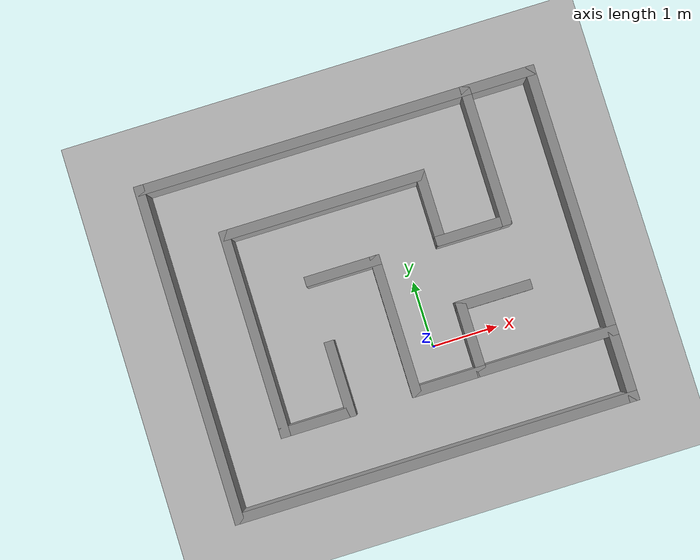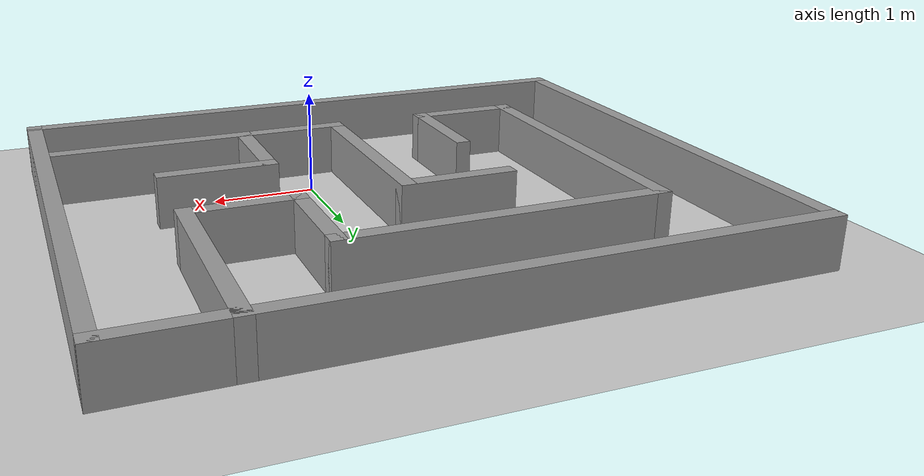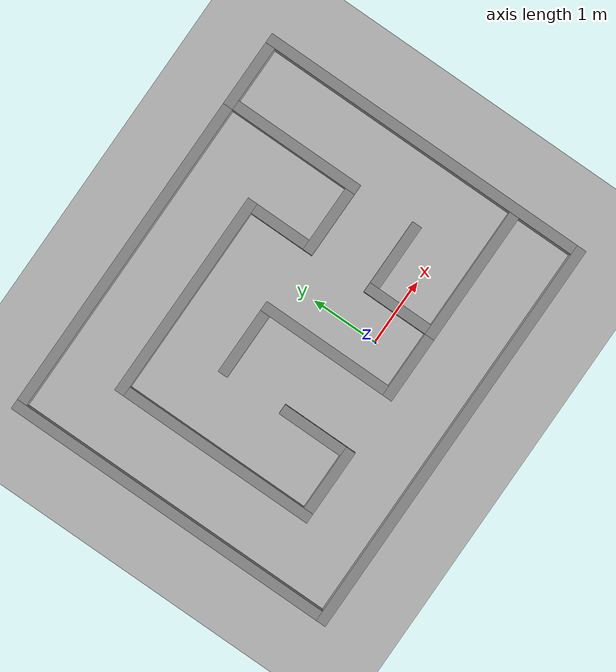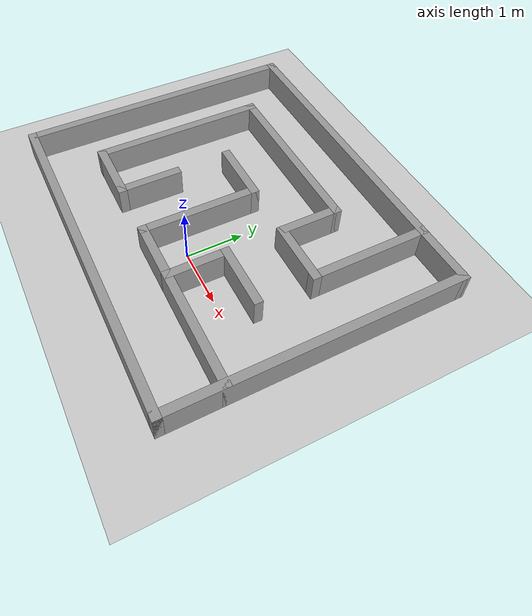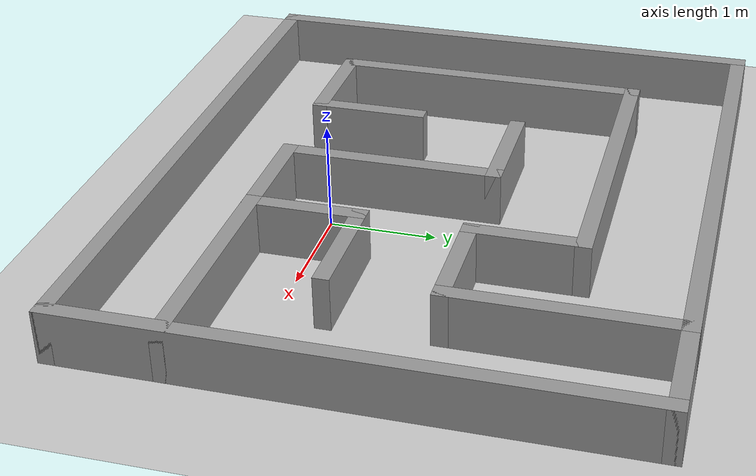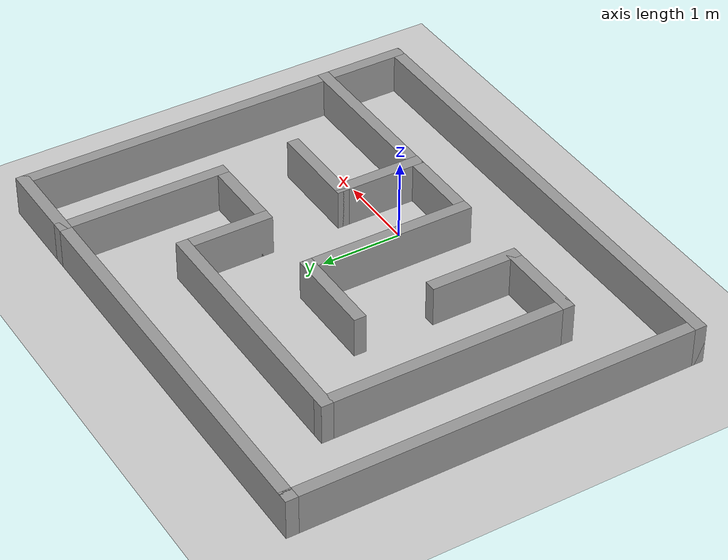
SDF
<sdf version="1.7">
 <world name="default">
  <light name="sun" type="directional">
   <pose>0 0 10 0 -0 0</pose>
   <diffuse>0.8 0.8 0.8 1</diffuse>
   <specular>0.2 0.2 0.2 1</specular>
   <attenuation>
    <range>1000</range>
    <constant>0.9</constant>
    <linear>0.01</linear>
    <quadratic>0.001</quadratic>
   </attenuation>
   <direction>-0.5 0.1 -0.9</direction>
   <spot><inner_angle>0</inner_angle><outer_angle>0</outer_angle><falloff>0</falloff></spot>
  </light>
  <model name="ground_plane">
   <static>1</static>
   <link name="link">
    <collision name="collision">
     <geometry><plane><normal>0 0 1</normal><size>100 100</size></plane></geometry>
     <surface><friction><ode><mu>100</mu><mu2>50</mu2></ode></friction></surface>
    </collision>
    <visual name="visual">
     <cast_shadows>0</cast_shadows>
     <geometry><plane><normal>0 0 1</normal><size>100 100</size></plane></geometry>
     <material>
      <script><uri>file://media/materials/scripts/gazebo.material</uri><name>Gazebo/Grey</name></script>
     </material>
    </visual>
   </link>
  </model>
  <gravity>0 0 -9.8</gravity>
  <magnetic_field>6e-06 2.3e-05 -4.2e-05</magnetic_field>
  <atmosphere type="adiabatic"/>
  <physics type="ode">
   <max_step_size>0.001</max_step_size>
   <real_time_factor>1</real_time_factor>
   <real_time_update_rate>1000</real_time_update_rate>
  </physics>
  <scene><ambient>0.4 0.4 0.4 1</ambient><background>0.7 0.7 0.7 1</background><shadows>1</shadows></scene>
  <audio><device>default</device></audio>
  <spherical_coordinates>
   <surface_model>EARTH_WGS84</surface_model>
   <latitude_deg>0</latitude_deg>
   <longitude_deg>0</longitude_deg>
   <elevation>0</elevation>
   <heading_deg>0</heading_deg>
  </spherical_coordinates>
  <model name="labyrinth">
   <pose>-0.45 0.95 0 0 -0 1.5708</pose>
   <link name="Wall_0">
    <collision name="Wall_0_Collision">
     <geometry><box><size>6.15 0.15 0.5</size></box></geometry>
     <pose>0 0 0.25 0 -0 0</pose>
    </collision>
    <visual name="Wall_0_Visual">
     <pose>0 0 0.25 0 -0 0</pose>
     <geometry><box><size>6.15 0.15 0.5</size></box></geometry>
     <material>
      <script><uri>file://media/materials/scripts/gazebo.material</uri><name>Gazebo/Grey</name></script>
      <ambient>1 1 1 1</ambient>
     </material>
     <meta><layer>0</layer></meta>
    </visual>
    <pose>-2.5 -0 0 0 -0 1.5708</pose>
   </link>
   <link name="Wall_10">
    <collision name="Wall_10_Collision">
     <geometry><box><size>3.15 0.15 0.5</size></box></geometry>
     <pose>0 0 0.25 0 -0 0</pose>
    </collision>
    <visual name="Wall_10_Visual">
     <pose>0 0 0.25 0 -0 0</pose>
     <geometry><box><size>3.15 0.15 0.5</size></box></geometry>
     <material>
      <script><uri>file://media/materials/scripts/gazebo.material</uri><name>Gazebo/Grey</name></script>
      <ambient>1 1 1 1</ambient>
     </material>
     <meta><layer>0</layer></meta>
    </visual>
    <pose>1.5 0.5 0 0 -0 1.5708</pose>
   </link>
   <link name="Wall_12">
    <collision name="Wall_12_Collision">
     <geometry><box><size>3.15 0.15 0.5</size></box></geometry>
     <pose>0 0 0.25 0 -0 0</pose>
    </collision>
    <visual name="Wall_12_Visual">
     <pose>0 0 0.25 0 -0 0</pose>
     <geometry><box><size>3.15 0.15 0.5</size></box></geometry>
     <material>
      <script><uri>file://media/materials/scripts/gazebo.material</uri><name>Gazebo/Grey</name></script>
      <ambient>1 1 1 1</ambient>
     </material>
     <meta><layer>0</layer></meta>
    </visual>
    <pose>0 2 0 0 -0 3.14159</pose>
   </link>
   <link name="Wall_13">
    <collision name="Wall_13_Collision">
     <geometry><box><size>1.15015 0.15 0.5</size></box></geometry>
     <pose>0 0 0.25 0 -0 0</pose>
    </collision>
    <visual name="Wall_13_Visual">
     <pose>0 0 0.25 0 -0 0</pose>
     <geometry><box><size>1.15015 0.15 0.5</size></box></geometry>
     <material>
      <script><uri>file://media/materials/scripts/gazebo.material</uri><name>Gazebo/Grey</name></script>
      <ambient>1 1 1 1</ambient>
     </material>
     <meta><layer>0</layer></meta>
    </visual>
    <pose>-1.5 1.5 0 0 -0 -1.5708</pose>
   </link>
   <link name="Wall_14">
    <collision name="Wall_14_Collision">
     <geometry><box><size>1.15 0.15 0.5</size></box></geometry>
     <pose>0 0 0.25 0 -0 0</pose>
    </collision>
    <visual name="Wall_14_Visual">
     <pose>0 0 0.25 0 -0 0</pose>
     <geometry><box><size>1.15 0.15 0.5</size></box></geometry>
     <material>
      <script><uri>file://media/materials/scripts/gazebo.material</uri><name>Gazebo/Grey</name></script>
      <ambient>1 1 1 1</ambient>
     </material>
     <meta><layer>0</layer></meta>
    </visual>
    <pose>-1 1 0 0 -0 0</pose>
   </link>
   <link name="Wall_16">
    <collision name="Wall_16_Collision">
     <geometry><box><size>5.15 0.15 0.5</size></box></geometry>
     <pose>0 0 0.25 0 -0 0</pose>
    </collision>
    <visual name="Wall_16_Visual">
     <pose>0 0 0.25 0 -0 0</pose>
     <geometry><box><size>5.15 0.15 0.5</size></box></geometry>
     <material>
      <script><uri>file://media/materials/scripts/gazebo.material</uri><name>Gazebo/Grey</name></script>
      <ambient>1 1 1 1</ambient>
     </material>
     <meta><layer>0</layer></meta>
    </visual>
    <pose>0 -3 0 0 -0 0</pose>
   </link>
   <link name="Wall_17">
    <collision name="Wall_17_Collision">
     <geometry><box><size>1.15 0.15 0.5</size></box></geometry>
     <pose>0 0 0.25 0 -0 0</pose>
    </collision>
    <visual name="Wall_17_Visual">
     <pose>0 0 0.25 0 -0 0</pose>
     <geometry><box><size>1.15 0.15 0.5</size></box></geometry>
     <material>
      <script><uri>file://media/materials/scripts/gazebo.material</uri><name>Gazebo/Grey</name></script>
      <ambient>1 1 1 1</ambient>
     </material>
     <meta><layer>0</layer></meta>
    </visual>
    <pose>2.5 -2.5 0 0 -0 1.5708</pose>
   </link>
   <link name="Wall_19">
    <collision name="Wall_19_Collision">
     <geometry><box><size>2.15 0.15 0.5</size></box></geometry>
     <pose>0 0 0.25 0 -0 0</pose>
    </collision>
    <visual name="Wall_19_Visual">
     <pose>0 0 0.25 0 -0 0</pose>
     <geometry><box><size>2.15 0.15 0.5</size></box></geometry>
     <material>
      <script><uri>file://media/materials/scripts/gazebo.material</uri><name>Gazebo/Grey</name></script>
      <ambient>1 1 1 1</ambient>
     </material>
     <meta><layer>0</layer></meta>
    </visual>
    <pose>-1.5 -2 0 0 -0 1.5708</pose>
   </link>
   <link name="Wall_2">
    <collision name="Wall_2_Collision">
     <geometry><box><size>5.15 0.15 0.5</size></box></geometry>
     <pose>0 0 0.25 0 -0 0</pose>
    </collision>
    <visual name="Wall_2_Visual">
     <pose>0 0 0.25 0 -0 0</pose>
     <geometry><box><size>5.15 0.15 0.5</size></box></geometry>
     <material>
      <script><uri>file://media/materials/scripts/gazebo.material</uri><name>Gazebo/Grey</name></script>
      <ambient>1 1 1 1</ambient>
     </material>
     <meta><layer>0</layer></meta>
    </visual>
    <pose>0 3 0 0 -0 0</pose>
   </link>
   <link name="Wall_20">
    <collision name="Wall_20_Collision">
     <geometry><box><size>1.15 0.15 0.5</size></box></geometry>
     <pose>0 0 0.25 0 -0 0</pose>
    </collision>
    <visual name="Wall_20_Visual">
     <pose>0 0 0.25 0 -0 0</pose>
     <geometry><box><size>1.15 0.15 0.5</size></box></geometry>
     <material>
      <script><uri>file://media/materials/scripts/gazebo.material</uri><name>Gazebo/Grey</name></script>
      <ambient>1 1 1 1</ambient>
     </material>
     <meta><layer>0</layer></meta>
    </visual>
    <pose>-1 -1 0 0 -0 0</pose>
   </link>
   <link name="Wall_21">
    <collision name="Wall_21_Collision">
     <geometry><box><size>1.15 0.15 0.5</size></box></geometry>
     <pose>0 0 0.25 0 -0 0</pose>
    </collision>
    <visual name="Wall_21_Visual">
     <pose>0 0 0.25 0 -0 0</pose>
     <geometry><box><size>1.15 0.15 0.5</size></box></geometry>
     <material>
      <script><uri>file://media/materials/scripts/gazebo.material</uri><name>Gazebo/Grey</name></script>
      <ambient>1 1 1 1</ambient>
     </material>
     <meta><layer>0</layer></meta>
    </visual>
    <pose>-0.5 -1.5 0 0 -0 -1.5708</pose>
   </link>
   <link name="Wall_23">
    <collision name="Wall_23_Collision">
     <geometry><box><size>1.15 0.15 0.5</size></box></geometry>
     <pose>0 0 0.25 0 -0 0</pose>
    </collision>
    <visual name="Wall_23_Visual">
     <pose>0 0 0.25 0 -0 0</pose>
     <geometry><box><size>1.15 0.15 0.5</size></box></geometry>
     <material>
      <script><uri>file://media/materials/scripts/gazebo.material</uri><name>Gazebo/Grey</name></script>
      <ambient>1 1 1 1</ambient>
     </material>
     <meta><layer>0</layer></meta>
    </visual>
    <pose>-1.5 -0.5 0 0 -0 1.5708</pose>
   </link>
   <link name="Wall_24">
    <collision name="Wall_24_Collision">
     <geometry><box><size>2.15 0.15 0.5</size></box></geometry>
     <pose>0 0 0.25 0 -0 0</pose>
    </collision>
    <visual name="Wall_24_Visual">
     <pose>0 0 0.25 0 -0 0</pose>
     <geometry><box><size>2.15 0.15 0.5</size></box></geometry>
     <material>
      <script><uri>file://media/materials/scripts/gazebo.material</uri><name>Gazebo/Grey</name></script>
      <ambient>1 1 1 1</ambient>
     </material>
     <meta><layer>0</layer></meta>
    </visual>
    <pose>-0.5 -0 0 0 -0 0</pose>
   </link>
   <link name="Wall_25">
    <collision name="Wall_25_Collision">
     <geometry><box><size>1.15 0.15 0.5</size></box></geometry>
     <pose>0 0 0.25 0 -0 0</pose>
    </collision>
    <visual name="Wall_25_Visual">
     <pose>0 0 0.25 0 -0 0</pose>
     <geometry><box><size>1.15 0.15 0.5</size></box></geometry>
     <material>
      <script><uri>file://media/materials/scripts/gazebo.material</uri><name>Gazebo/Grey</name></script>
      <ambient>1 1 1 1</ambient>
     </material>
     <meta><layer>0</layer></meta>
    </visual>
    <pose>0.5 0.5 0 0 -0 1.5708</pose>
   </link>
   <link name="Wall_4">
    <collision name="Wall_4_Collision">
     <geometry><box><size>5.15 0.15 0.5</size></box></geometry>
     <pose>0 0 0.25 0 -0 0</pose>
    </collision>
    <visual name="Wall_4_Visual">
     <pose>0 0 0.25 0 -0 0</pose>
     <geometry><box><size>5.15 0.15 0.5</size></box></geometry>
     <material>
      <script><uri>file://media/materials/scripts/gazebo.material</uri><name>Gazebo/Grey</name></script>
      <ambient>1 1 1 1</ambient>
     </material>
     <meta><layer>0</layer></meta>
    </visual>
    <pose>2.5 0.5 0 0 -0 -1.5708</pose>
   </link>
   <link name="Wall_6">
    <collision name="Wall_6_Collision">
     <geometry><box><size>2.15 0.15 0.5</size></box></geometry>
     <pose>0 0 0.25 0 -0 0</pose>
    </collision>
    <visual name="Wall_6_Visual">
     <pose>0 0 0.25 0 -0 0</pose>
     <geometry><box><size>2.15 0.15 0.5</size></box></geometry>
     <material>
      <script><uri>file://media/materials/scripts/gazebo.material</uri><name>Gazebo/Grey</name></script>
      <ambient>1 1 1 1</ambient>
     </material>
     <meta><layer>0</layer></meta>
    </visual>
    <pose>1.5 -2 0 0 -0 3.14159</pose>
   </link>
   <link name="Wall_8">
    <collision name="Wall_8_Collision">
     <geometry><box><size>1.15 0.15 0.5</size></box></geometry>
     <pose>0 0 0.25 0 -0 0</pose>
    </collision>
    <visual name="Wall_8_Visual">
     <pose>0 0 0.25 0 -0 0</pose>
     <geometry><box><size>1.15 0.15 0.5</size></box></geometry>
     <material>
      <script><uri>file://media/materials/scripts/gazebo.material</uri><name>Gazebo/Grey</name></script>
      <ambient>1 1 1 1</ambient>
     </material>
     <meta><layer>0</layer></meta>
    </visual>
    <pose>0.5 -1.5 0 0 -0 1.5708</pose>
   </link>
   <link name="Wall_9">
    <collision name="Wall_9_Collision">
     <geometry><box><size>1.15 0.15 0.5</size></box></geometry>
     <pose>0 0 0.25 0 -0 0</pose>
    </collision>
    <visual name="Wall_9_Visual">
     <pose>0 0 0.25 0 -0 0</pose>
     <geometry><box><size>1.15 0.15 0.5</size></box></geometry>
     <material>
      <script><uri>file://media/materials/scripts/gazebo.material</uri><name>Gazebo/Grey</name></script>
      <ambient>1 1 1 1</ambient>
     </material>
     <meta><layer>0</layer></meta>
    </visual>
    <pose>1 -1 0 0 -0 0</pose>
   </link>
   <static>1</static>
  </model>
 </world>
</sdf>
